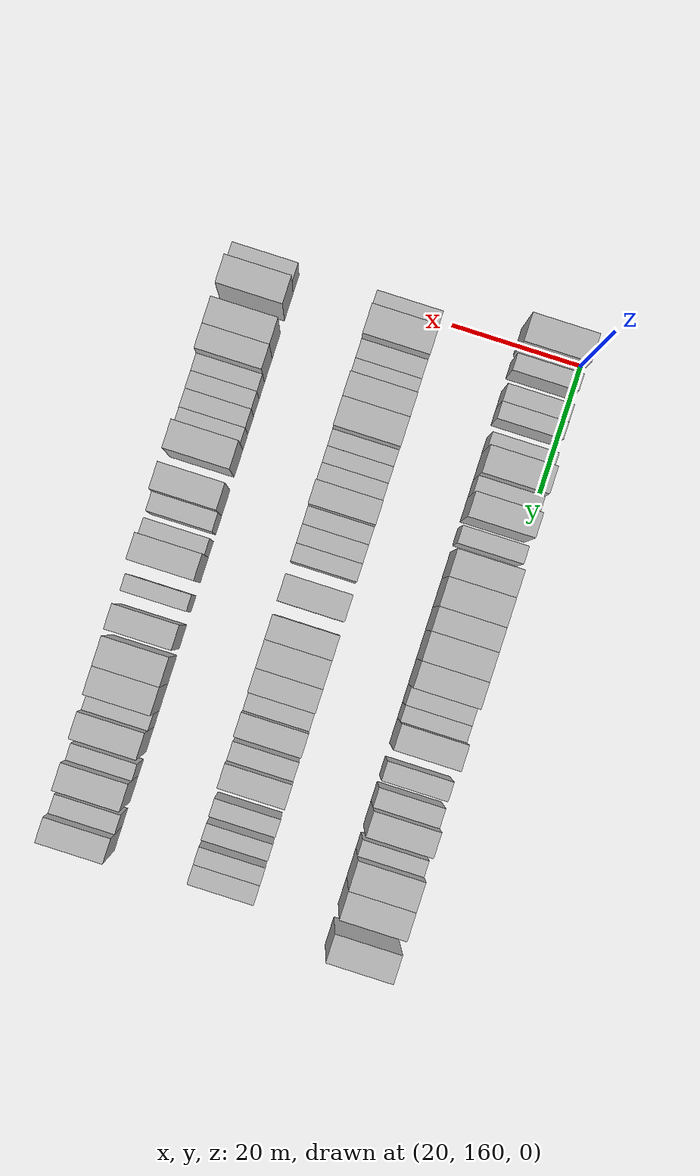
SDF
<sdf version="1.6">
 <world name="default">
  <model name="building_102">
   <static>1</static>
   <pose>25.0000 159.4403 0 0.000000 0.000000 0.000000</pose>
   <link name="link">
    <pose>0 0 4.50 0 0 0</pose>
    <collision name="collision"><geometry><box><size>10.0000 4.2808 9.0000</size></box></geometry></collision>
    <visual name="visual">
     <cast_shadows>0</cast_shadows>
     <geometry><box><size>10.0000 4.2808 9.0000</size></box></geometry>
     <material>
      <script>
       <uri>model://HANNAS_wall/materials/scripts</uri>
       <uri>model://HANNAS_wall/materials/textures</uri>
       <name>vrc/HANNAS_wall</name>
      </script>
     </material>
    </visual>
   </link>
  </model>
  <model name="building_103">
   <static>1</static>
   <pose>25.0000 163.8794 0 0.000000 0.000000 0.000000</pose>
   <link name="link">
    <pose>0 0 3.00 0 0 0</pose>
    <collision name="collision"><geometry><box><size>10.0000 2.5974 6.0000</size></box></geometry></collision>
    <visual name="visual">
     <cast_shadows>0</cast_shadows>
     <geometry><box><size>10.0000 2.5974 6.0000</size></box></geometry>
     <material>
      <script>
       <uri>model://HANNAS_wall/materials/scripts</uri>
       <uri>model://HANNAS_wall/materials/textures</uri>
       <name>vrc/HANNAS_wall</name>
      </script>
     </material>
    </visual>
   </link>
  </model>
  <model name="building_104">
   <static>1</static>
   <pose>25.0000 168.5133 0 0.000000 0.000000 0.000000</pose>
   <link name="link">
    <pose>0 0 3.00 0 0 0</pose>
    <collision name="collision"><geometry><box><size>10.0000 2.6705 6.0000</size></box></geometry></collision>
    <visual name="visual">
     <cast_shadows>0</cast_shadows>
     <geometry><box><size>10.0000 2.6705 6.0000</size></box></geometry>
     <material>
      <script>
       <uri>model://HANNAS_wall/materials/scripts</uri>
       <uri>model://HANNAS_wall/materials/textures</uri>
       <name>vrc/HANNAS_wall</name>
      </script>
     </material>
    </visual>
   </link>
  </model>
  <model name="building_105">
   <static>1</static>
   <pose>25.0000 171.1608 0 0.000000 0.000000 0.000000</pose>
   <link name="link">
    <pose>0 0 3.00 0 0 0</pose>
    <collision name="collision"><geometry><box><size>10.0000 2.6245 6.0000</size></box></geometry></collision>
    <visual name="visual">
     <cast_shadows>0</cast_shadows>
     <geometry><box><size>10.0000 2.6245 6.0000</size></box></geometry>
     <material>
      <script>
       <uri>model://HANNAS_wall/materials/scripts</uri>
       <uri>model://HANNAS_wall/materials/textures</uri>
       <name>vrc/HANNAS_wall</name>
      </script>
     </material>
    </visual>
   </link>
  </model>
  <model name="building_106">
   <static>1</static>
   <pose>25.0000 175.6965 0 0.000000 0.000000 0.000000</pose>
   <link name="link">
    <pose>0 0 3.00 0 0 0</pose>
    <collision name="collision"><geometry><box><size>10.0000 2.4468 6.0000</size></box></geometry></collision>
    <visual name="visual">
     <cast_shadows>0</cast_shadows>
     <geometry><box><size>10.0000 2.4468 6.0000</size></box></geometry>
     <material>
      <script>
       <uri>model://HANNAS_wall/materials/scripts</uri>
       <uri>model://HANNAS_wall/materials/textures</uri>
       <name>vrc/HANNAS_wall</name>
      </script>
     </material>
    </visual>
   </link>
  </model>
  <model name="building_107">
   <static>1</static>
   <pose>25.0000 178.9939 0 0.000000 0.000000 0.000000</pose>
   <link name="link">
    <pose>0 0 4.50 0 0 0</pose>
    <collision name="collision"><geometry><box><size>10.0000 4.1480 9.0000</size></box></geometry></collision>
    <visual name="visual">
     <cast_shadows>0</cast_shadows>
     <geometry><box><size>10.0000 4.1480 9.0000</size></box></geometry>
     <material>
      <script>
       <uri>model://HANNAS_wall/materials/scripts</uri>
       <uri>model://HANNAS_wall/materials/textures</uri>
       <name>vrc/HANNAS_wall</name>
      </script>
     </material>
    </visual>
   </link>
  </model>
  <model name="building_108">
   <static>1</static>
   <pose>25.0000 182.4290 0 0.000000 0.000000 0.000000</pose>
   <link name="link">
    <pose>0 0 3.00 0 0 0</pose>
    <collision name="collision"><geometry><box><size>10.0000 2.7222 6.0000</size></box></geometry></collision>
    <visual name="visual">
     <cast_shadows>0</cast_shadows>
     <geometry><box><size>10.0000 2.7222 6.0000</size></box></geometry>
     <material>
      <script>
       <uri>model://HANNAS_wall/materials/scripts</uri>
       <uri>model://HANNAS_wall/materials/textures</uri>
       <name>vrc/HANNAS_wall</name>
      </script>
     </material>
    </visual>
   </link>
  </model>
  <model name="building_109">
   <static>1</static>
   <pose>25.0000 185.6795 0 0.000000 0.000000 0.000000</pose>
   <link name="link">
    <pose>0 0 4.50 0 0 0</pose>
    <collision name="collision"><geometry><box><size>10.0000 3.7788 9.0000</size></box></geometry></collision>
    <visual name="visual">
     <cast_shadows>0</cast_shadows>
     <geometry><box><size>10.0000 3.7788 9.0000</size></box></geometry>
     <material>
      <script>
       <uri>model://HANNAS_wall/materials/scripts</uri>
       <uri>model://HANNAS_wall/materials/textures</uri>
       <name>vrc/HANNAS_wall</name>
      </script>
     </material>
    </visual>
   </link>
  </model>
  <model name="building_110">
   <static>1</static>
   <pose>25.0000 189.9262 0 0.000000 0.000000 0.000000</pose>
   <link name="link">
    <pose>0 0 3.00 0 0 0</pose>
    <collision name="collision"><geometry><box><size>10.0000 2.7145 6.0000</size></box></geometry></collision>
    <visual name="visual">
     <cast_shadows>0</cast_shadows>
     <geometry><box><size>10.0000 2.7145 6.0000</size></box></geometry>
     <material>
      <script>
       <uri>model://HANNAS_wall/materials/scripts</uri>
       <uri>model://HANNAS_wall/materials/textures</uri>
       <name>vrc/HANNAS_wall</name>
      </script>
     </material>
    </visual>
   </link>
  </model>
  <model name="building_111">
   <static>1</static>
   <pose>25.0000 194.3397 0 0.000000 0.000000 0.000000</pose>
   <link name="link">
    <pose>0 0 4.50 0 0 0</pose>
    <collision name="collision"><geometry><box><size>10.0000 4.1125 9.0000</size></box></geometry></collision>
    <visual name="visual">
     <cast_shadows>0</cast_shadows>
     <geometry><box><size>10.0000 4.1125 9.0000</size></box></geometry>
     <material>
      <script>
       <uri>model://HANNAS_wall/materials/scripts</uri>
       <uri>model://HANNAS_wall/materials/textures</uri>
       <name>vrc/HANNAS_wall</name>
      </script>
     </material>
    </visual>
   </link>
  </model>
  <model name="building_112">
   <static>1</static>
   <pose>25.0000 198.6037 0 0.000000 0.000000 0.000000</pose>
   <link name="link">
    <pose>0 0 4.50 0 0 0</pose>
    <collision name="collision"><geometry><box><size>10.0000 4.4157 9.0000</size></box></geometry></collision>
    <visual name="visual">
     <cast_shadows>0</cast_shadows>
     <geometry><box><size>10.0000 4.4157 9.0000</size></box></geometry>
     <material>
      <script>
       <uri>model://HANNAS_wall/materials/scripts</uri>
       <uri>model://HANNAS_wall/materials/textures</uri>
       <name>vrc/HANNAS_wall</name>
      </script>
     </material>
    </visual>
   </link>
  </model>
  <model name="building_113">
   <static>1</static>
   <pose>25.0000 202.6425 0 0.000000 0.000000 0.000000</pose>
   <link name="link">
    <pose>0 0 4.50 0 0 0</pose>
    <collision name="collision"><geometry><box><size>10.0000 3.6619 9.0000</size></box></geometry></collision>
    <visual name="visual">
     <cast_shadows>0</cast_shadows>
     <geometry><box><size>10.0000 3.6619 9.0000</size></box></geometry>
     <material>
      <script>
       <uri>model://HANNAS_wall/materials/scripts</uri>
       <uri>model://HANNAS_wall/materials/textures</uri>
       <name>vrc/HANNAS_wall</name>
      </script>
     </material>
    </visual>
   </link>
  </model>
  <model name="building_114">
   <static>1</static>
   <pose>25.0000 206.6773 0 0.000000 0.000000 0.000000</pose>
   <link name="link">
    <pose>0 0 4.50 0 0 0</pose>
    <collision name="collision"><geometry><box><size>10.0000 4.4077 9.0000</size></box></geometry></collision>
    <visual name="visual">
     <cast_shadows>0</cast_shadows>
     <geometry><box><size>10.0000 4.4077 9.0000</size></box></geometry>
     <material>
      <script>
       <uri>model://HANNAS_wall/materials/scripts</uri>
       <uri>model://HANNAS_wall/materials/textures</uri>
       <name>vrc/HANNAS_wall</name>
      </script>
     </material>
    </visual>
   </link>
  </model>
  <model name="building_115">
   <static>1</static>
   <pose>25.0000 210.8857 0 0.000000 0.000000 0.000000</pose>
   <link name="link">
    <pose>0 0 4.50 0 0 0</pose>
    <collision name="collision"><geometry><box><size>10.0000 4.0090 9.0000</size></box></geometry></collision>
    <visual name="visual">
     <cast_shadows>0</cast_shadows>
     <geometry><box><size>10.0000 4.0090 9.0000</size></box></geometry>
     <material>
      <script>
       <uri>model://HANNAS_wall/materials/scripts</uri>
       <uri>model://HANNAS_wall/materials/textures</uri>
       <name>vrc/HANNAS_wall</name>
      </script>
     </material>
    </visual>
   </link>
  </model>
  <model name="building_116">
   <static>1</static>
   <pose>25.0000 214.2655 0 0.000000 0.000000 0.000000</pose>
   <link name="link">
    <pose>0 0 3.00 0 0 0</pose>
    <collision name="collision"><geometry><box><size>10.0000 2.7507 6.0000</size></box></geometry></collision>
    <visual name="visual">
     <cast_shadows>0</cast_shadows>
     <geometry><box><size>10.0000 2.7507 6.0000</size></box></geometry>
     <material>
      <script>
       <uri>model://HANNAS_wall/materials/scripts</uri>
       <uri>model://HANNAS_wall/materials/textures</uri>
       <name>vrc/HANNAS_wall</name>
      </script>
     </material>
    </visual>
   </link>
  </model>
  <model name="building_117">
   <static>1</static>
   <pose>25.0000 216.8967 0 0.000000 0.000000 0.000000</pose>
   <link name="link">
    <pose>0 0 3.00 0 0 0</pose>
    <collision name="collision"><geometry><box><size>10.0000 2.5116 6.0000</size></box></geometry></collision>
    <visual name="visual">
     <cast_shadows>0</cast_shadows>
     <geometry><box><size>10.0000 2.5116 6.0000</size></box></geometry>
     <material>
      <script>
       <uri>model://HANNAS_wall/materials/scripts</uri>
       <uri>model://HANNAS_wall/materials/textures</uri>
       <name>vrc/HANNAS_wall</name>
      </script>
     </material>
    </visual>
   </link>
  </model>
  <model name="building_118">
   <static>1</static>
   <pose>25.0000 220.0985 0 0.000000 0.000000 0.000000</pose>
   <link name="link">
    <pose>0 0 4.50 0 0 0</pose>
    <collision name="collision"><geometry><box><size>10.0000 3.8920 9.0000</size></box></geometry></collision>
    <visual name="visual">
     <cast_shadows>0</cast_shadows>
     <geometry><box><size>10.0000 3.8920 9.0000</size></box></geometry>
     <material>
      <script>
       <uri>model://HANNAS_wall/materials/scripts</uri>
       <uri>model://HANNAS_wall/materials/textures</uri>
       <name>vrc/HANNAS_wall</name>
      </script>
     </material>
    </visual>
   </link>
  </model>
  <model name="building_119">
   <static>1</static>
   <pose>25.0000 225.5279 0 0.000000 0.000000 0.000000</pose>
   <link name="link">
    <pose>0 0 3.00 0 0 0</pose>
    <collision name="collision"><geometry><box><size>10.0000 2.9669 6.0000</size></box></geometry></collision>
    <visual name="visual">
     <cast_shadows>0</cast_shadows>
     <geometry><box><size>10.0000 2.9669 6.0000</size></box></geometry>
     <material>
      <script>
       <uri>model://HANNAS_wall/materials/scripts</uri>
       <uri>model://HANNAS_wall/materials/textures</uri>
       <name>vrc/HANNAS_wall</name>
      </script>
     </material>
    </visual>
   </link>
  </model>
  <model name="building_120">
   <static>1</static>
   <pose>25.0000 229.5112 0 0.000000 0.000000 0.000000</pose>
   <link name="link">
    <pose>0 0 3.00 0 0 0</pose>
    <collision name="collision"><geometry><box><size>10.0000 2.9995 6.0000</size></box></geometry></collision>
    <visual name="visual">
     <cast_shadows>0</cast_shadows>
     <geometry><box><size>10.0000 2.9995 6.0000</size></box></geometry>
     <material>
      <script>
       <uri>model://HANNAS_wall/materials/scripts</uri>
       <uri>model://HANNAS_wall/materials/textures</uri>
       <name>vrc/HANNAS_wall</name>
      </script>
     </material>
    </visual>
   </link>
  </model>
  <model name="building_121">
   <static>1</static>
   <pose>25.0000 232.9311 0 0.000000 0.000000 0.000000</pose>
   <link name="link">
    <pose>0 0 4.50 0 0 0</pose>
    <collision name="collision"><geometry><box><size>10.0000 3.8404 9.0000</size></box></geometry></collision>
    <visual name="visual">
     <cast_shadows>0</cast_shadows>
     <geometry><box><size>10.0000 3.8404 9.0000</size></box></geometry>
     <material>
      <script>
       <uri>model://HANNAS_wall/materials/scripts</uri>
       <uri>model://HANNAS_wall/materials/textures</uri>
       <name>vrc/HANNAS_wall</name>
      </script>
     </material>
    </visual>
   </link>
  </model>
  <model name="building_122">
   <static>1</static>
   <pose>25.0000 237.0873 0 0.000000 0.000000 0.000000</pose>
   <link name="link">
    <pose>0 0 3.00 0 0 0</pose>
    <collision name="collision"><geometry><box><size>10.0000 2.4720 6.0000</size></box></geometry></collision>
    <visual name="visual">
     <cast_shadows>0</cast_shadows>
     <geometry><box><size>10.0000 2.4720 6.0000</size></box></geometry>
     <material>
      <script>
       <uri>model://HANNAS_wall/materials/scripts</uri>
       <uri>model://HANNAS_wall/materials/textures</uri>
       <name>vrc/HANNAS_wall</name>
      </script>
     </material>
    </visual>
   </link>
  </model>
  <model name="building_123">
   <static>1</static>
   <pose>25.0000 240.5631 0 0.000000 0.000000 0.000000</pose>
   <link name="link">
    <pose>0 0 4.50 0 0 0</pose>
    <collision name="collision"><geometry><box><size>10.0000 4.4794 9.0000</size></box></geometry></collision>
    <visual name="visual">
     <cast_shadows>0</cast_shadows>
     <geometry><box><size>10.0000 4.4794 9.0000</size></box></geometry>
     <material>
      <script>
       <uri>model://HANNAS_wall/materials/scripts</uri>
       <uri>model://HANNAS_wall/materials/textures</uri>
       <name>vrc/HANNAS_wall</name>
      </script>
     </material>
    </visual>
   </link>
  </model>
  <model name="building_124">
   <static>1</static>
   <pose>25.0000 244.9308 0 0.000000 0.000000 0.000000</pose>
   <link name="link">
    <pose>0 0 4.50 0 0 0</pose>
    <collision name="collision"><geometry><box><size>10.0000 4.2561 9.0000</size></box></geometry></collision>
    <visual name="visual">
     <cast_shadows>0</cast_shadows>
     <geometry><box><size>10.0000 4.2561 9.0000</size></box></geometry>
     <material>
      <script>
       <uri>model://HANNAS_wall/materials/scripts</uri>
       <uri>model://HANNAS_wall/materials/textures</uri>
       <name>vrc/HANNAS_wall</name>
      </script>
     </material>
    </visual>
   </link>
  </model>
  <model name="building_125">
   <static>1</static>
   <pose>25.0000 251.1929 0 0.000000 0.000000 0.000000</pose>
   <link name="link">
    <pose>0 0 4.50 0 0 0</pose>
    <collision name="collision"><geometry><box><size>10.0000 4.2680 9.0000</size></box></geometry></collision>
    <visual name="visual">
     <cast_shadows>0</cast_shadows>
     <geometry><box><size>10.0000 4.2680 9.0000</size></box></geometry>
     <material>
      <script>
       <uri>model://HANNAS_wall/materials/scripts</uri>
       <uri>model://HANNAS_wall/materials/textures</uri>
       <name>vrc/HANNAS_wall</name>
      </script>
     </material>
    </visual>
   </link>
  </model>
  <model name="building_217">
   <static>1</static>
   <pose>47.0000 161.5502 0 0.000000 0.000000 0.000000</pose>
   <link name="link">
    <pose>0 0 3.00 0 0 0</pose>
    <collision name="collision"><geometry><box><size>10.0000 2.8811 6.0000</size></box></geometry></collision>
    <visual name="visual">
     <cast_shadows>0</cast_shadows>
     <geometry><box><size>10.0000 2.8811 6.0000</size></box></geometry>
     <material>
      <script>
       <uri>model://HANNAS_wall/materials/scripts</uri>
       <uri>model://HANNAS_wall/materials/textures</uri>
       <name>vrc/HANNAS_wall</name>
      </script>
     </material>
    </visual>
   </link>
  </model>
  <model name="building_218">
   <static>1</static>
   <pose>47.0000 165.2228 0 0.000000 0.000000 0.000000</pose>
   <link name="link">
    <pose>0 0 4.50 0 0 0</pose>
    <collision name="collision"><geometry><box><size>10.0000 4.4641 9.0000</size></box></geometry></collision>
    <visual name="visual">
     <cast_shadows>0</cast_shadows>
     <geometry><box><size>10.0000 4.4641 9.0000</size></box></geometry>
     <material>
      <script>
       <uri>model://HANNAS_wall/materials/scripts</uri>
       <uri>model://HANNAS_wall/materials/textures</uri>
       <name>vrc/HANNAS_wall</name>
      </script>
     </material>
    </visual>
   </link>
  </model>
  <model name="building_219">
   <static>1</static>
   <pose>47.0000 168.9011 0 0.000000 0.000000 0.000000</pose>
   <link name="link">
    <pose>0 0 3.00 0 0 0</pose>
    <collision name="collision"><geometry><box><size>10.0000 2.8925 6.0000</size></box></geometry></collision>
    <visual name="visual">
     <cast_shadows>0</cast_shadows>
     <geometry><box><size>10.0000 2.8925 6.0000</size></box></geometry>
     <material>
      <script>
       <uri>model://HANNAS_wall/materials/scripts</uri>
       <uri>model://HANNAS_wall/materials/textures</uri>
       <name>vrc/HANNAS_wall</name>
      </script>
     </material>
    </visual>
   </link>
  </model>
  <model name="building_220">
   <static>1</static>
   <pose>47.0000 171.6820 0 0.000000 0.000000 0.000000</pose>
   <link name="link">
    <pose>0 0 3.00 0 0 0</pose>
    <collision name="collision"><geometry><box><size>10.0000 2.6692 6.0000</size></box></geometry></collision>
    <visual name="visual">
     <cast_shadows>0</cast_shadows>
     <geometry><box><size>10.0000 2.6692 6.0000</size></box></geometry>
     <material>
      <script>
       <uri>model://HANNAS_wall/materials/scripts</uri>
       <uri>model://HANNAS_wall/materials/textures</uri>
       <name>vrc/HANNAS_wall</name>
      </script>
     </material>
    </visual>
   </link>
  </model>
  <model name="building_221">
   <static>1</static>
   <pose>47.0000 174.8446 0 0.000000 0.000000 0.000000</pose>
   <link name="link">
    <pose>0 0 4.50 0 0 0</pose>
    <collision name="collision"><geometry><box><size>10.0000 3.6560 9.0000</size></box></geometry></collision>
    <visual name="visual">
     <cast_shadows>0</cast_shadows>
     <geometry><box><size>10.0000 3.6560 9.0000</size></box></geometry>
     <material>
      <script>
       <uri>model://HANNAS_wall/materials/scripts</uri>
       <uri>model://HANNAS_wall/materials/textures</uri>
       <name>vrc/HANNAS_wall</name>
      </script>
     </material>
    </visual>
   </link>
  </model>
  <model name="building_222">
   <static>1</static>
   <pose>47.0000 178.8779 0 0.000000 0.000000 0.000000</pose>
   <link name="link">
    <pose>0 0 4.50 0 0 0</pose>
    <collision name="collision"><geometry><box><size>10.0000 4.4106 9.0000</size></box></geometry></collision>
    <visual name="visual">
     <cast_shadows>0</cast_shadows>
     <geometry><box><size>10.0000 4.4106 9.0000</size></box></geometry>
     <material>
      <script>
       <uri>model://HANNAS_wall/materials/scripts</uri>
       <uri>model://HANNAS_wall/materials/textures</uri>
       <name>vrc/HANNAS_wall</name>
      </script>
     </material>
    </visual>
   </link>
  </model>
  <model name="building_223">
   <static>1</static>
   <pose>47.0000 182.3544 0 0.000000 0.000000 0.000000</pose>
   <link name="link">
    <pose>0 0 3.00 0 0 0</pose>
    <collision name="collision"><geometry><box><size>10.0000 2.5424 6.0000</size></box></geometry></collision>
    <visual name="visual">
     <cast_shadows>0</cast_shadows>
     <geometry><box><size>10.0000 2.5424 6.0000</size></box></geometry>
     <material>
      <script>
       <uri>model://HANNAS_wall/materials/scripts</uri>
       <uri>model://HANNAS_wall/materials/textures</uri>
       <name>vrc/HANNAS_wall</name>
      </script>
     </material>
    </visual>
   </link>
  </model>
  <model name="building_224">
   <static>1</static>
   <pose>47.0000 184.8769 0 0.000000 0.000000 0.000000</pose>
   <link name="link">
    <pose>0 0 3.00 0 0 0</pose>
    <collision name="collision"><geometry><box><size>10.0000 2.5025 6.0000</size></box></geometry></collision>
    <visual name="visual">
     <cast_shadows>0</cast_shadows>
     <geometry><box><size>10.0000 2.5025 6.0000</size></box></geometry>
     <material>
      <script>
       <uri>model://HANNAS_wall/materials/scripts</uri>
       <uri>model://HANNAS_wall/materials/textures</uri>
       <name>vrc/HANNAS_wall</name>
      </script>
     </material>
    </visual>
   </link>
  </model>
  <model name="building_225">
   <static>1</static>
   <pose>47.0000 187.5927 0 0.000000 0.000000 0.000000</pose>
   <link name="link">
    <pose>0 0 3.00 0 0 0</pose>
    <collision name="collision"><geometry><box><size>10.0000 2.9292 6.0000</size></box></geometry></collision>
    <visual name="visual">
     <cast_shadows>0</cast_shadows>
     <geometry><box><size>10.0000 2.9292 6.0000</size></box></geometry>
     <material>
      <script>
       <uri>model://HANNAS_wall/materials/scripts</uri>
       <uri>model://HANNAS_wall/materials/textures</uri>
       <name>vrc/HANNAS_wall</name>
      </script>
     </material>
    </visual>
   </link>
  </model>
  <model name="building_226">
   <static>1</static>
   <pose>47.0000 190.8725 0 0.000000 0.000000 0.000000</pose>
   <link name="link">
    <pose>0 0 4.50 0 0 0</pose>
    <collision name="collision"><geometry><box><size>10.0000 3.6304 9.0000</size></box></geometry></collision>
    <visual name="visual">
     <cast_shadows>0</cast_shadows>
     <geometry><box><size>10.0000 3.6304 9.0000</size></box></geometry>
     <material>
      <script>
       <uri>model://HANNAS_wall/materials/scripts</uri>
       <uri>model://HANNAS_wall/materials/textures</uri>
       <name>vrc/HANNAS_wall</name>
      </script>
     </material>
    </visual>
   </link>
  </model>
  <model name="building_227">
   <static>1</static>
   <pose>47.0000 194.0469 0 0.000000 0.000000 0.000000</pose>
   <link name="link">
    <pose>0 0 3.00 0 0 0</pose>
    <collision name="collision"><geometry><box><size>10.0000 2.7184 6.0000</size></box></geometry></collision>
    <visual name="visual">
     <cast_shadows>0</cast_shadows>
     <geometry><box><size>10.0000 2.7184 6.0000</size></box></geometry>
     <material>
      <script>
       <uri>model://HANNAS_wall/materials/scripts</uri>
       <uri>model://HANNAS_wall/materials/textures</uri>
       <name>vrc/HANNAS_wall</name>
      </script>
     </material>
    </visual>
   </link>
  </model>
  <model name="building_228">
   <static>1</static>
   <pose>47.0000 196.8375 0 0.000000 0.000000 0.000000</pose>
   <link name="link">
    <pose>0 0 3.00 0 0 0</pose>
    <collision name="collision"><geometry><box><size>10.0000 2.8629 6.0000</size></box></geometry></collision>
    <visual name="visual">
     <cast_shadows>0</cast_shadows>
     <geometry><box><size>10.0000 2.8629 6.0000</size></box></geometry>
     <material>
      <script>
       <uri>model://HANNAS_wall/materials/scripts</uri>
       <uri>model://HANNAS_wall/materials/textures</uri>
       <name>vrc/HANNAS_wall</name>
      </script>
     </material>
    </visual>
   </link>
  </model>
  <model name="building_229">
   <static>1</static>
   <pose>47.0000 199.6398 0 0.000000 0.000000 0.000000</pose>
   <link name="link">
    <pose>0 0 3.00 0 0 0</pose>
    <collision name="collision"><geometry><box><size>10.0000 2.7417 6.0000</size></box></geometry></collision>
    <visual name="visual">
     <cast_shadows>0</cast_shadows>
     <geometry><box><size>10.0000 2.7417 6.0000</size></box></geometry>
     <material>
      <script>
       <uri>model://HANNAS_wall/materials/scripts</uri>
       <uri>model://HANNAS_wall/materials/textures</uri>
       <name>vrc/HANNAS_wall</name>
      </script>
     </material>
    </visual>
   </link>
  </model>
  <model name="building_230">
   <static>1</static>
   <pose>47.0000 205.0261 0 0.000000 0.000000 0.000000</pose>
   <link name="link">
    <pose>0 0 4.50 0 0 0</pose>
    <collision name="collision"><geometry><box><size>10.0000 4.0308 9.0000</size></box></geometry></collision>
    <visual name="visual">
     <cast_shadows>0</cast_shadows>
     <geometry><box><size>10.0000 4.0308 9.0000</size></box></geometry>
     <material>
      <script>
       <uri>model://HANNAS_wall/materials/scripts</uri>
       <uri>model://HANNAS_wall/materials/textures</uri>
       <name>vrc/HANNAS_wall</name>
      </script>
     </material>
    </visual>
   </link>
  </model>
  <model name="building_231">
   <static>1</static>
   <pose>47.0000 210.8925 0 0.000000 0.000000 0.000000</pose>
   <link name="link">
    <pose>0 0 4.50 0 0 0</pose>
    <collision name="collision"><geometry><box><size>10.0000 3.7022 9.0000</size></box></geometry></collision>
    <visual name="visual">
     <cast_shadows>0</cast_shadows>
     <geometry><box><size>10.0000 3.7022 9.0000</size></box></geometry>
     <material>
      <script>
       <uri>model://HANNAS_wall/materials/scripts</uri>
       <uri>model://HANNAS_wall/materials/textures</uri>
       <name>vrc/HANNAS_wall</name>
      </script>
     </material>
    </visual>
   </link>
  </model>
  <model name="building_232">
   <static>1</static>
   <pose>47.0000 214.8559 0 0.000000 0.000000 0.000000</pose>
   <link name="link">
    <pose>0 0 4.50 0 0 0</pose>
    <collision name="collision"><geometry><box><size>10.0000 4.2246 9.0000</size></box></geometry></collision>
    <visual name="visual">
     <cast_shadows>0</cast_shadows>
     <geometry><box><size>10.0000 4.2246 9.0000</size></box></geometry>
     <material>
      <script>
       <uri>model://HANNAS_wall/materials/scripts</uri>
       <uri>model://HANNAS_wall/materials/textures</uri>
       <name>vrc/HANNAS_wall</name>
      </script>
     </material>
    </visual>
   </link>
  </model>
  <model name="building_233">
   <static>1</static>
   <pose>47.0000 218.7708 0 0.000000 0.000000 0.000000</pose>
   <link name="link">
    <pose>0 0 4.50 0 0 0</pose>
    <collision name="collision"><geometry><box><size>10.0000 3.6050 9.0000</size></box></geometry></collision>
    <visual name="visual">
     <cast_shadows>0</cast_shadows>
     <geometry><box><size>10.0000 3.6050 9.0000</size></box></geometry>
     <material>
      <script>
       <uri>model://HANNAS_wall/materials/scripts</uri>
       <uri>model://HANNAS_wall/materials/textures</uri>
       <name>vrc/HANNAS_wall</name>
      </script>
     </material>
    </visual>
   </link>
  </model>
  <model name="building_234">
   <static>1</static>
   <pose>47.0000 222.0320 0 0.000000 0.000000 0.000000</pose>
   <link name="link">
    <pose>0 0 3.00 0 0 0</pose>
    <collision name="collision"><geometry><box><size>10.0000 2.9176 6.0000</size></box></geometry></collision>
    <visual name="visual">
     <cast_shadows>0</cast_shadows>
     <geometry><box><size>10.0000 2.9176 6.0000</size></box></geometry>
     <material>
      <script>
       <uri>model://HANNAS_wall/materials/scripts</uri>
       <uri>model://HANNAS_wall/materials/textures</uri>
       <name>vrc/HANNAS_wall</name>
      </script>
     </material>
    </visual>
   </link>
  </model>
  <model name="building_235">
   <static>1</static>
   <pose>47.0000 225.3044 0 0.000000 0.000000 0.000000</pose>
   <link name="link">
    <pose>0 0 4.50 0 0 0</pose>
    <collision name="collision"><geometry><box><size>10.0000 3.6271 9.0000</size></box></geometry></collision>
    <visual name="visual">
     <cast_shadows>0</cast_shadows>
     <geometry><box><size>10.0000 3.6271 9.0000</size></box></geometry>
     <material>
      <script>
       <uri>model://HANNAS_wall/materials/scripts</uri>
       <uri>model://HANNAS_wall/materials/textures</uri>
       <name>vrc/HANNAS_wall</name>
      </script>
     </material>
    </visual>
   </link>
  </model>
  <model name="building_236">
   <static>1</static>
   <pose>47.0000 229.5671 0 0.000000 0.000000 0.000000</pose>
   <link name="link">
    <pose>0 0 3.00 0 0 0</pose>
    <collision name="collision"><geometry><box><size>10.0000 2.8984 6.0000</size></box></geometry></collision>
    <visual name="visual">
     <cast_shadows>0</cast_shadows>
     <geometry><box><size>10.0000 2.8984 6.0000</size></box></geometry>
     <material>
      <script>
       <uri>model://HANNAS_wall/materials/scripts</uri>
       <uri>model://HANNAS_wall/materials/textures</uri>
       <name>vrc/HANNAS_wall</name>
      </script>
     </material>
    </visual>
   </link>
  </model>
  <model name="building_237">
   <static>1</static>
   <pose>47.0000 232.8510 0 0.000000 0.000000 0.000000</pose>
   <link name="link">
    <pose>0 0 4.50 0 0 0</pose>
    <collision name="collision"><geometry><box><size>10.0000 3.6693 9.0000</size></box></geometry></collision>
    <visual name="visual">
     <cast_shadows>0</cast_shadows>
     <geometry><box><size>10.0000 3.6693 9.0000</size></box></geometry>
     <material>
      <script>
       <uri>model://HANNAS_wall/materials/scripts</uri>
       <uri>model://HANNAS_wall/materials/textures</uri>
       <name>vrc/HANNAS_wall</name>
      </script>
     </material>
    </visual>
   </link>
  </model>
  <model name="building_238">
   <static>1</static>
   <pose>47.0000 238.0472 0 0.000000 0.000000 0.000000</pose>
   <link name="link">
    <pose>0 0 3.00 0 0 0</pose>
    <collision name="collision"><geometry><box><size>10.0000 2.7230 6.0000</size></box></geometry></collision>
    <visual name="visual">
     <cast_shadows>0</cast_shadows>
     <geometry><box><size>10.0000 2.7230 6.0000</size></box></geometry>
     <material>
      <script>
       <uri>model://HANNAS_wall/materials/scripts</uri>
       <uri>model://HANNAS_wall/materials/textures</uri>
       <name>vrc/HANNAS_wall</name>
      </script>
     </material>
    </visual>
   </link>
  </model>
  <model name="building_239">
   <static>1</static>
   <pose>47.0000 241.6811 0 0.000000 0.000000 0.000000</pose>
   <link name="link">
    <pose>0 0 3.00 0 0 0</pose>
    <collision name="collision"><geometry><box><size>10.0000 2.5449 6.0000</size></box></geometry></collision>
    <visual name="visual">
     <cast_shadows>0</cast_shadows>
     <geometry><box><size>10.0000 2.5449 6.0000</size></box></geometry>
     <material>
      <script>
       <uri>model://HANNAS_wall/materials/scripts</uri>
       <uri>model://HANNAS_wall/materials/textures</uri>
       <name>vrc/HANNAS_wall</name>
      </script>
     </material>
    </visual>
   </link>
  </model>
  <model name="building_240">
   <static>1</static>
   <pose>47.0000 245.2788 0 0.000000 0.000000 0.000000</pose>
   <link name="link">
    <pose>0 0 3.00 0 0 0</pose>
    <collision name="collision"><geometry><box><size>10.0000 2.6503 6.0000</size></box></geometry></collision>
    <visual name="visual">
     <cast_shadows>0</cast_shadows>
     <geometry><box><size>10.0000 2.6503 6.0000</size></box></geometry>
     <material>
      <script>
       <uri>model://HANNAS_wall/materials/scripts</uri>
       <uri>model://HANNAS_wall/materials/textures</uri>
       <name>vrc/HANNAS_wall</name>
      </script>
     </material>
    </visual>
   </link>
  </model>
  <model name="building_241">
   <static>1</static>
   <pose>47.0000 248.0874 0 0.000000 0.000000 0.000000</pose>
   <link name="link">
    <pose>0 0 3.00 0 0 0</pose>
    <collision name="collision"><geometry><box><size>10.0000 2.9669 6.0000</size></box></geometry></collision>
    <visual name="visual">
     <cast_shadows>0</cast_shadows>
     <geometry><box><size>10.0000 2.9669 6.0000</size></box></geometry>
     <material>
      <script>
       <uri>model://HANNAS_wall/materials/scripts</uri>
       <uri>model://HANNAS_wall/materials/textures</uri>
       <name>vrc/HANNAS_wall</name>
      </script>
     </material>
    </visual>
   </link>
  </model>
  <model name="building_340">
   <static>1</static>
   <pose>69.0000 161.2838 0 0.000000 0.000000 0.000000</pose>
   <link name="link">
    <pose>0 0 3.00 0 0 0</pose>
    <collision name="collision"><geometry><box><size>10.0000 2.8897 6.0000</size></box></geometry></collision>
    <visual name="visual">
     <cast_shadows>0</cast_shadows>
     <geometry><box><size>10.0000 2.8897 6.0000</size></box></geometry>
     <material>
      <script>
       <uri>model://HANNAS_wall/materials/scripts</uri>
       <uri>model://HANNAS_wall/materials/textures</uri>
       <name>vrc/HANNAS_wall</name>
      </script>
     </material>
    </visual>
   </link>
  </model>
  <model name="building_341">
   <static>1</static>
   <pose>69.0000 164.8499 0 0.000000 0.000000 0.000000</pose>
   <link name="link">
    <pose>0 0 4.50 0 0 0</pose>
    <collision name="collision"><geometry><box><size>10.0000 4.2426 9.0000</size></box></geometry></collision>
    <visual name="visual">
     <cast_shadows>0</cast_shadows>
     <geometry><box><size>10.0000 4.2426 9.0000</size></box></geometry>
     <material>
      <script>
       <uri>model://HANNAS_wall/materials/scripts</uri>
       <uri>model://HANNAS_wall/materials/textures</uri>
       <name>vrc/HANNAS_wall</name>
      </script>
     </material>
    </visual>
   </link>
  </model>
  <model name="building_342">
   <static>1</static>
   <pose>69.0000 170.9662 0 0.000000 0.000000 0.000000</pose>
   <link name="link">
    <pose>0 0 4.50 0 0 0</pose>
    <collision name="collision"><geometry><box><size>10.0000 3.9899 9.0000</size></box></geometry></collision>
    <visual name="visual">
     <cast_shadows>0</cast_shadows>
     <geometry><box><size>10.0000 3.9899 9.0000</size></box></geometry>
     <material>
      <script>
       <uri>model://HANNAS_wall/materials/scripts</uri>
       <uri>model://HANNAS_wall/materials/textures</uri>
       <name>vrc/HANNAS_wall</name>
      </script>
     </material>
    </visual>
   </link>
  </model>
  <model name="building_343">
   <static>1</static>
   <pose>69.0000 174.8141 0 0.000000 0.000000 0.000000</pose>
   <link name="link">
    <pose>0 0 4.50 0 0 0</pose>
    <collision name="collision"><geometry><box><size>10.0000 3.7059 9.0000</size></box></geometry></collision>
    <visual name="visual">
     <cast_shadows>0</cast_shadows>
     <geometry><box><size>10.0000 3.7059 9.0000</size></box></geometry>
     <material>
      <script>
       <uri>model://HANNAS_wall/materials/scripts</uri>
       <uri>model://HANNAS_wall/materials/textures</uri>
       <name>vrc/HANNAS_wall</name>
      </script>
     </material>
    </visual>
   </link>
  </model>
  <model name="building_344">
   <static>1</static>
   <pose>69.0000 177.9819 0 0.000000 0.000000 0.000000</pose>
   <link name="link">
    <pose>0 0 3.00 0 0 0</pose>
    <collision name="collision"><geometry><box><size>10.0000 2.6297 6.0000</size></box></geometry></collision>
    <visual name="visual">
     <cast_shadows>0</cast_shadows>
     <geometry><box><size>10.0000 2.6297 6.0000</size></box></geometry>
     <material>
      <script>
       <uri>model://HANNAS_wall/materials/scripts</uri>
       <uri>model://HANNAS_wall/materials/textures</uri>
       <name>vrc/HANNAS_wall</name>
      </script>
     </material>
    </visual>
   </link>
  </model>
  <model name="building_345">
   <static>1</static>
   <pose>69.0000 180.6288 0 0.000000 0.000000 0.000000</pose>
   <link name="link">
    <pose>0 0 3.00 0 0 0</pose>
    <collision name="collision"><geometry><box><size>10.0000 2.6641 6.0000</size></box></geometry></collision>
    <visual name="visual">
     <cast_shadows>0</cast_shadows>
     <geometry><box><size>10.0000 2.6641 6.0000</size></box></geometry>
     <material>
      <script>
       <uri>model://HANNAS_wall/materials/scripts</uri>
       <uri>model://HANNAS_wall/materials/textures</uri>
       <name>vrc/HANNAS_wall</name>
      </script>
     </material>
    </visual>
   </link>
  </model>
  <model name="building_346">
   <static>1</static>
   <pose>69.0000 183.3786 0 0.000000 0.000000 0.000000</pose>
   <link name="link">
    <pose>0 0 3.00 0 0 0</pose>
    <collision name="collision"><geometry><box><size>10.0000 2.8356 6.0000</size></box></geometry></collision>
    <visual name="visual">
     <cast_shadows>0</cast_shadows>
     <geometry><box><size>10.0000 2.8356 6.0000</size></box></geometry>
     <material>
      <script>
       <uri>model://HANNAS_wall/materials/scripts</uri>
       <uri>model://HANNAS_wall/materials/textures</uri>
       <name>vrc/HANNAS_wall</name>
      </script>
     </material>
    </visual>
   </link>
  </model>
  <model name="building_347">
   <static>1</static>
   <pose>69.0000 186.0013 0 0.000000 0.000000 0.000000</pose>
   <link name="link">
    <pose>0 0 3.00 0 0 0</pose>
    <collision name="collision"><geometry><box><size>10.0000 2.4098 6.0000</size></box></geometry></collision>
    <visual name="visual">
     <cast_shadows>0</cast_shadows>
     <geometry><box><size>10.0000 2.4098 6.0000</size></box></geometry>
     <material>
      <script>
       <uri>model://HANNAS_wall/materials/scripts</uri>
       <uri>model://HANNAS_wall/materials/textures</uri>
       <name>vrc/HANNAS_wall</name>
      </script>
     </material>
    </visual>
   </link>
  </model>
  <model name="building_348">
   <static>1</static>
   <pose>69.0000 189.3385 0 0.000000 0.000000 0.000000</pose>
   <link name="link">
    <pose>0 0 4.50 0 0 0</pose>
    <collision name="collision"><geometry><box><size>10.0000 4.2645 9.0000</size></box></geometry></collision>
    <visual name="visual">
     <cast_shadows>0</cast_shadows>
     <geometry><box><size>10.0000 4.2645 9.0000</size></box></geometry>
     <material>
      <script>
       <uri>model://HANNAS_wall/materials/scripts</uri>
       <uri>model://HANNAS_wall/materials/textures</uri>
       <name>vrc/HANNAS_wall</name>
      </script>
     </material>
    </visual>
   </link>
  </model>
  <model name="building_349">
   <static>1</static>
   <pose>69.0000 195.5017 0 0.000000 0.000000 0.000000</pose>
   <link name="link">
    <pose>0 0 4.50 0 0 0</pose>
    <collision name="collision"><geometry><box><size>10.0000 4.0618 9.0000</size></box></geometry></collision>
    <visual name="visual">
     <cast_shadows>0</cast_shadows>
     <geometry><box><size>10.0000 4.0618 9.0000</size></box></geometry>
     <material>
      <script>
       <uri>model://HANNAS_wall/materials/scripts</uri>
       <uri>model://HANNAS_wall/materials/textures</uri>
       <name>vrc/HANNAS_wall</name>
      </script>
     </material>
    </visual>
   </link>
  </model>
  <model name="building_350">
   <static>1</static>
   <pose>69.0000 199.0061 0 0.000000 0.000000 0.000000</pose>
   <link name="link">
    <pose>0 0 3.00 0 0 0</pose>
    <collision name="collision"><geometry><box><size>10.0000 2.9470 6.0000</size></box></geometry></collision>
    <visual name="visual">
     <cast_shadows>0</cast_shadows>
     <geometry><box><size>10.0000 2.9470 6.0000</size></box></geometry>
     <material>
      <script>
       <uri>model://HANNAS_wall/materials/scripts</uri>
       <uri>model://HANNAS_wall/materials/textures</uri>
       <name>vrc/HANNAS_wall</name>
      </script>
     </material>
    </visual>
   </link>
  </model>
  <model name="building_351">
   <static>1</static>
   <pose>69.0000 202.7218 0 0.000000 0.000000 0.000000</pose>
   <link name="link">
    <pose>0 0 3.00 0 0 0</pose>
    <collision name="collision"><geometry><box><size>10.0000 2.4846 6.0000</size></box></geometry></collision>
    <visual name="visual">
     <cast_shadows>0</cast_shadows>
     <geometry><box><size>10.0000 2.4846 6.0000</size></box></geometry>
     <material>
      <script>
       <uri>model://HANNAS_wall/materials/scripts</uri>
       <uri>model://HANNAS_wall/materials/textures</uri>
       <name>vrc/HANNAS_wall</name>
      </script>
     </material>
    </visual>
   </link>
  </model>
  <model name="building_352">
   <static>1</static>
   <pose>69.0000 205.9574 0 0.000000 0.000000 0.000000</pose>
   <link name="link">
    <pose>0 0 4.50 0 0 0</pose>
    <collision name="collision"><geometry><box><size>10.0000 3.9867 9.0000</size></box></geometry></collision>
    <visual name="visual">
     <cast_shadows>0</cast_shadows>
     <geometry><box><size>10.0000 3.9867 9.0000</size></box></geometry>
     <material>
      <script>
       <uri>model://HANNAS_wall/materials/scripts</uri>
       <uri>model://HANNAS_wall/materials/textures</uri>
       <name>vrc/HANNAS_wall</name>
      </script>
     </material>
    </visual>
   </link>
  </model>
  <model name="building_353">
   <static>1</static>
   <pose>69.0000 211.2164 0 0.000000 0.000000 0.000000</pose>
   <link name="link">
    <pose>0 0 3.00 0 0 0</pose>
    <collision name="collision"><geometry><box><size>10.0000 2.5312 6.0000</size></box></geometry></collision>
    <visual name="visual">
     <cast_shadows>0</cast_shadows>
     <geometry><box><size>10.0000 2.5312 6.0000</size></box></geometry>
     <material>
      <script>
       <uri>model://HANNAS_wall/materials/scripts</uri>
       <uri>model://HANNAS_wall/materials/textures</uri>
       <name>vrc/HANNAS_wall</name>
      </script>
     </material>
    </visual>
   </link>
  </model>
  <model name="building_354">
   <static>1</static>
   <pose>69.0000 216.3628 0 0.000000 0.000000 0.000000</pose>
   <link name="link">
    <pose>0 0 4.50 0 0 0</pose>
    <collision name="collision"><geometry><box><size>10.0000 3.7617 9.0000</size></box></geometry></collision>
    <visual name="visual">
     <cast_shadows>0</cast_shadows>
     <geometry><box><size>10.0000 3.7617 9.0000</size></box></geometry>
     <material>
      <script>
       <uri>model://HANNAS_wall/materials/scripts</uri>
       <uri>model://HANNAS_wall/materials/textures</uri>
       <name>vrc/HANNAS_wall</name>
      </script>
     </material>
    </visual>
   </link>
  </model>
  <model name="building_355">
   <static>1</static>
   <pose>69.0000 221.4664 0 0.000000 0.000000 0.000000</pose>
   <link name="link">
    <pose>0 0 4.50 0 0 0</pose>
    <collision name="collision"><geometry><box><size>10.0000 4.4456 9.0000</size></box></geometry></collision>
    <visual name="visual">
     <cast_shadows>0</cast_shadows>
     <geometry><box><size>10.0000 4.4456 9.0000</size></box></geometry>
     <material>
      <script>
       <uri>model://HANNAS_wall/materials/scripts</uri>
       <uri>model://HANNAS_wall/materials/textures</uri>
       <name>vrc/HANNAS_wall</name>
      </script>
     </material>
    </visual>
   </link>
  </model>
  <model name="building_356">
   <static>1</static>
   <pose>69.0000 225.8019 0 0.000000 0.000000 0.000000</pose>
   <link name="link">
    <pose>0 0 4.50 0 0 0</pose>
    <collision name="collision"><geometry><box><size>10.0000 4.2254 9.0000</size></box></geometry></collision>
    <visual name="visual">
     <cast_shadows>0</cast_shadows>
     <geometry><box><size>10.0000 4.2254 9.0000</size></box></geometry>
     <material>
      <script>
       <uri>model://HANNAS_wall/materials/scripts</uri>
       <uri>model://HANNAS_wall/materials/textures</uri>
       <name>vrc/HANNAS_wall</name>
      </script>
     </material>
    </visual>
   </link>
  </model>
  <model name="building_357">
   <static>1</static>
   <pose>69.0000 229.1718 0 0.000000 0.000000 0.000000</pose>
   <link name="link">
    <pose>0 0 3.00 0 0 0</pose>
    <collision name="collision"><geometry><box><size>10.0000 2.5143 6.0000</size></box></geometry></collision>
    <visual name="visual">
     <cast_shadows>0</cast_shadows>
     <geometry><box><size>10.0000 2.5143 6.0000</size></box></geometry>
     <material>
      <script>
       <uri>model://HANNAS_wall/materials/scripts</uri>
       <uri>model://HANNAS_wall/materials/textures</uri>
       <name>vrc/HANNAS_wall</name>
      </script>
     </material>
    </visual>
   </link>
  </model>
  <model name="building_358">
   <static>1</static>
   <pose>69.0000 232.4274 0 0.000000 0.000000 0.000000</pose>
   <link name="link">
    <pose>0 0 4.50 0 0 0</pose>
    <collision name="collision"><geometry><box><size>10.0000 3.9970 9.0000</size></box></geometry></collision>
    <visual name="visual">
     <cast_shadows>0</cast_shadows>
     <geometry><box><size>10.0000 3.9970 9.0000</size></box></geometry>
     <material>
      <script>
       <uri>model://HANNAS_wall/materials/scripts</uri>
       <uri>model://HANNAS_wall/materials/textures</uri>
       <name>vrc/HANNAS_wall</name>
      </script>
     </material>
    </visual>
   </link>
  </model>
  <model name="building_359">
   <static>1</static>
   <pose>69.0000 236.6929 0 0.000000 0.000000 0.000000</pose>
   <link name="link">
    <pose>0 0 3.00 0 0 0</pose>
    <collision name="collision"><geometry><box><size>10.0000 2.5339 6.0000</size></box></geometry></collision>
    <visual name="visual">
     <cast_shadows>0</cast_shadows>
     <geometry><box><size>10.0000 2.5339 6.0000</size></box></geometry>
     <material>
      <script>
       <uri>model://HANNAS_wall/materials/scripts</uri>
       <uri>model://HANNAS_wall/materials/textures</uri>
       <name>vrc/HANNAS_wall</name>
      </script>
     </material>
    </visual>
   </link>
  </model>
  <model name="building_360">
   <static>1</static>
   <pose>69.0000 240.0132 0 0.000000 0.000000 0.000000</pose>
   <link name="link">
    <pose>0 0 4.50 0 0 0</pose>
    <collision name="collision"><geometry><box><size>10.0000 4.1067 9.0000</size></box></geometry></collision>
    <visual name="visual">
     <cast_shadows>0</cast_shadows>
     <geometry><box><size>10.0000 4.1067 9.0000</size></box></geometry>
     <material>
      <script>
       <uri>model://HANNAS_wall/materials/scripts</uri>
       <uri>model://HANNAS_wall/materials/textures</uri>
       <name>vrc/HANNAS_wall</name>
      </script>
     </material>
    </visual>
   </link>
  </model>
  <model name="building_361">
   <static>1</static>
   <pose>69.0000 244.5176 0 0.000000 0.000000 0.000000</pose>
   <link name="link">
    <pose>0 0 3.00 0 0 0</pose>
    <collision name="collision"><geometry><box><size>10.0000 2.9021 6.0000</size></box></geometry></collision>
    <visual name="visual">
     <cast_shadows>0</cast_shadows>
     <geometry><box><size>10.0000 2.9021 6.0000</size></box></geometry>
     <material>
      <script>
       <uri>model://HANNAS_wall/materials/scripts</uri>
       <uri>model://HANNAS_wall/materials/textures</uri>
       <name>vrc/HANNAS_wall</name>
      </script>
     </material>
    </visual>
   </link>
  </model>
  <model name="building_362">
   <static>1</static>
   <pose>69.0000 247.8481 0 0.000000 0.000000 0.000000</pose>
   <link name="link">
    <pose>0 0 4.50 0 0 0</pose>
    <collision name="collision"><geometry><box><size>10.0000 3.7589 9.0000</size></box></geometry></collision>
    <visual name="visual">
     <cast_shadows>0</cast_shadows>
     <geometry><box><size>10.0000 3.7589 9.0000</size></box></geometry>
     <material>
      <script>
       <uri>model://HANNAS_wall/materials/scripts</uri>
       <uri>model://HANNAS_wall/materials/textures</uri>
       <name>vrc/HANNAS_wall</name>
      </script>
     </material>
    </visual>
   </link>
  </model>
 </world>
</sdf>
